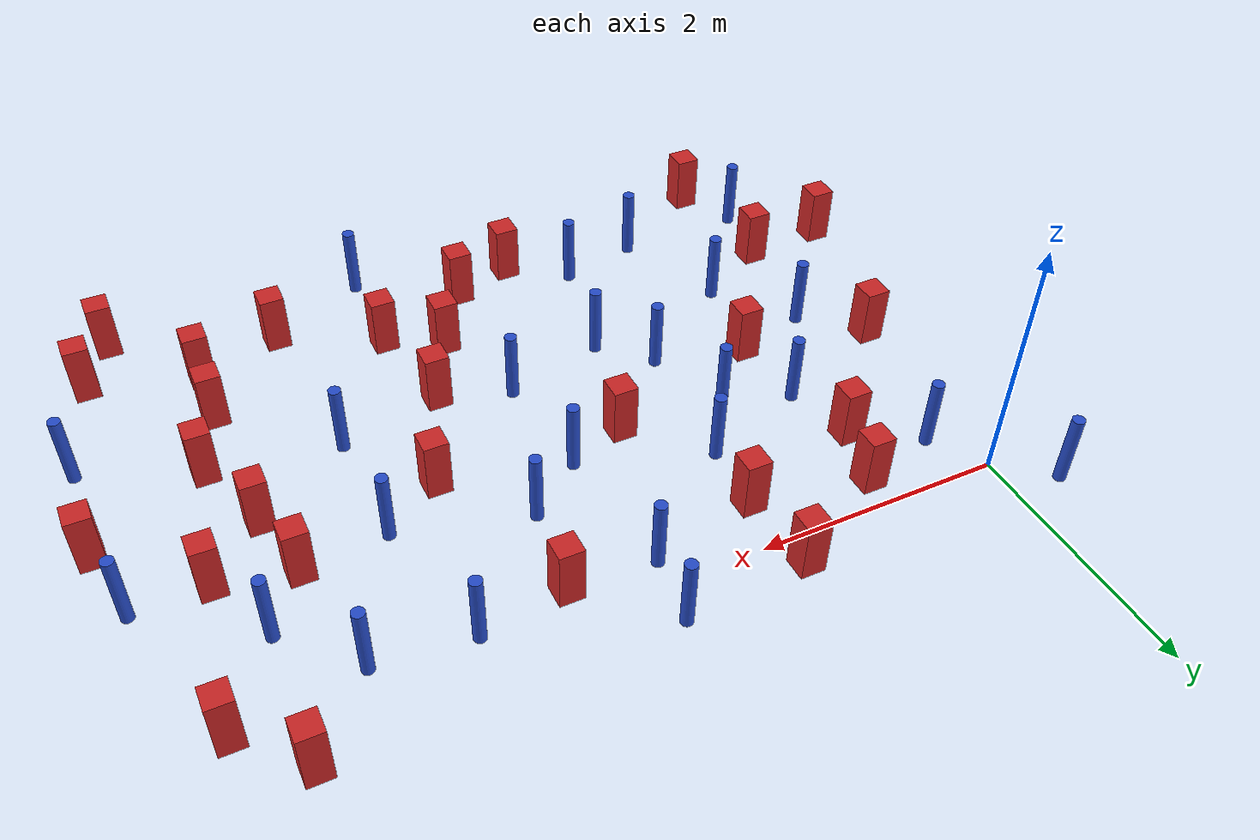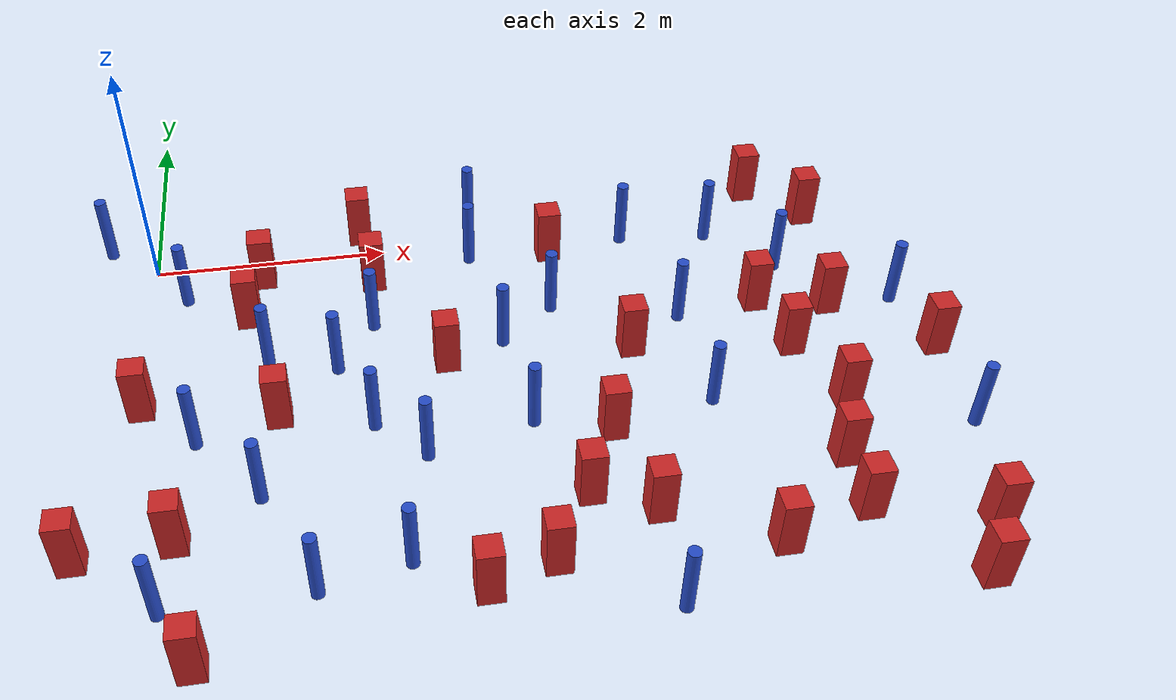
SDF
<sdf version="1.6">
 <model name="dense_27">
  <model name="square_post_obstacle6">
   <static>true</static>
   <pose>3.90744752582 -1.59957269851 1.91545236811e-07 -7.35059704564e-06 1.12565212e-07 2.39332434364e-05</pose>
   <link name="link">
    <pose>0 0 0.25 0 -0 0</pose>
    <inertial>
     <mass>100</mass>
     <inertia>
      <ixx>0.166667</ixx>
      <ixy>0</ixy>
      <ixz>0</ixz>
      <iyy>0.166667</iyy>
      <iyz>0</iyz>
      <izz>0.166667</izz>
     </inertia>
    </inertial>
    <collision name="collision"><geometry><box><size>.2 .2 .5</size></box></geometry></collision>
    <visual name="visual">
     <geometry><box><size>.2 .2 .5</size></box></geometry>
     <material>
      <script><name>Gazebo/Red</name><uri>file://media/materials/scripts/gazebo.material</uri></script>
     </material>
    </visual>
   </link>
  </model>
  <model name="pole_obstacle7">
   <static>true</static>
   <pose>2.8126677085 0.329689469374 7.38925637345e-09 -8.471706928e-08 1.24976765172e-08 -1.74513093013e-07</pose>
   <link name="link">
    <pose>0 0 0.3 0 -0 0</pose>
    <inertial>
     <mass>1</mass>
     <inertia><ixx>0.145833</ixx><ixy>0</ixy><ixz>0</ixz><iyy>0.145833</iyy><iyz>0</iyz><izz>0.125</izz></inertia>
    </inertial>
    <collision name="collision">
     <geometry><cylinder><radius>0.05</radius><length>.6</length></cylinder></geometry>
    </collision>
    <visual name="visual">
     <geometry><cylinder><radius>0.05</radius><length>.6</length></cylinder></geometry>
     <material>
      <script><name>Gazebo/Blue</name><uri>file://media/materials/scripts/gazebo.material</uri></script>
     </material>
    </visual>
   </link>
  </model>
  <model name="square_post_obstacle13">
   <static>true</static>
   <pose>6.10127495856 -3.80343116019 1.91545236811e-07 -7.35059704564e-06 1.12565212e-07 2.39332434364e-05</pose>
   <link name="link">
    <pose>0 0 0.25 0 -0 0</pose>
    <inertial>
     <mass>100</mass>
     <inertia>
      <ixx>0.166667</ixx>
      <ixy>0</ixy>
      <ixz>0</ixz>
      <iyy>0.166667</iyy>
      <iyz>0</iyz>
      <izz>0.166667</izz>
     </inertia>
    </inertial>
    <collision name="collision"><geometry><box><size>.2 .2 .5</size></box></geometry></collision>
    <visual name="visual">
     <geometry><box><size>.2 .2 .5</size></box></geometry>
     <material>
      <script><name>Gazebo/Red</name><uri>file://media/materials/scripts/gazebo.material</uri></script>
     </material>
    </visual>
   </link>
  </model>
  <model name="square_post_obstacle14">
   <static>true</static>
   <pose>1.80562686687 0.251162258014 1.91545236811e-07 -7.35059704564e-06 1.12565212e-07 2.39332434364e-05</pose>
   <link name="link">
    <pose>0 0 0.25 0 -0 0</pose>
    <inertial>
     <mass>100</mass>
     <inertia>
      <ixx>0.166667</ixx>
      <ixy>0</ixy>
      <ixz>0</ixz>
      <iyy>0.166667</iyy>
      <iyz>0</iyz>
      <izz>0.166667</izz>
     </inertia>
    </inertial>
    <collision name="collision"><geometry><box><size>.2 .2 .5</size></box></geometry></collision>
    <visual name="visual">
     <geometry><box><size>.2 .2 .5</size></box></geometry>
     <material>
      <script><name>Gazebo/Red</name><uri>file://media/materials/scripts/gazebo.material</uri></script>
     </material>
    </visual>
   </link>
  </model>
  <model name="square_post_obstacle21">
   <static>true</static>
   <pose>0.802221249417 -0.748672035375 1.91545236811e-07 -7.35059704564e-06 1.12565212e-07 2.39332434364e-05</pose>
   <link name="link">
    <pose>0 0 0.25 0 -0 0</pose>
    <inertial>
     <mass>100</mass>
     <inertia>
      <ixx>0.166667</ixx>
      <ixy>0</ixy>
      <ixz>0</ixz>
      <iyy>0.166667</iyy>
      <iyz>0</iyz>
      <izz>0.166667</izz>
     </inertia>
    </inertial>
    <collision name="collision"><geometry><box><size>.2 .2 .5</size></box></geometry></collision>
    <visual name="visual">
     <geometry><box><size>.2 .2 .5</size></box></geometry>
     <material>
      <script><name>Gazebo/Red</name><uri>file://media/materials/scripts/gazebo.material</uri></script>
     </material>
    </visual>
   </link>
  </model>
  <model name="pole_obstacle15">
   <static>true</static>
   <pose>1.24080618713 -3.68273115442 7.38925637345e-09 -8.47170692799e-08 1.24976765053e-08 -1.74513093017e-07</pose>
   <link name="link">
    <pose>0 0 0.3 0 -0 0</pose>
    <inertial>
     <mass>1</mass>
     <inertia><ixx>0.145833</ixx><ixy>0</ixy><ixz>0</ixz><iyy>0.145833</iyy><iyz>0</iyz><izz>0.125</izz></inertia>
    </inertial>
    <collision name="collision">
     <geometry><cylinder><radius>0.05</radius><length>.6</length></cylinder></geometry>
    </collision>
    <visual name="visual">
     <geometry><cylinder><radius>0.05</radius><length>.6</length></cylinder></geometry>
     <material>
      <script><name>Gazebo/Blue</name><uri>file://media/materials/scripts/gazebo.material</uri></script>
     </material>
    </visual>
   </link>
  </model>
  <model name="pole_obstacle22">
   <static>true</static>
   <pose>3.34542982329 -0.992490725536 7.38925637345e-09 -8.471706928e-08 1.24976765191e-08 -1.74513093012e-07</pose>
   <link name="link">
    <pose>0 0 0.3 0 -0 0</pose>
    <inertial>
     <mass>1</mass>
     <inertia><ixx>0.145833</ixx><ixy>0</ixy><ixz>0</ixz><iyy>0.145833</iyy><iyz>0</iyz><izz>0.125</izz></inertia>
    </inertial>
    <collision name="collision">
     <geometry><cylinder><radius>0.05</radius><length>.6</length></cylinder></geometry>
    </collision>
    <visual name="visual">
     <geometry><cylinder><radius>0.05</radius><length>.6</length></cylinder></geometry>
     <material>
      <script><name>Gazebo/Blue</name><uri>file://media/materials/scripts/gazebo.material</uri></script>
     </material>
    </visual>
   </link>
  </model>
  <model name="square_post_obstacle35">
   <static>true</static>
   <pose>0.264709637256 -3.11509529331 1.91545236811e-07 -7.35059704564e-06 1.12565212e-07 2.39332434364e-05</pose>
   <link name="link">
    <pose>0 0 0.25 0 -0 0</pose>
    <inertial>
     <mass>100</mass>
     <inertia>
      <ixx>0.166667</ixx>
      <ixy>0</ixy>
      <ixz>0</ixz>
      <iyy>0.166667</iyy>
      <iyz>0</iyz>
      <izz>0.166667</izz>
     </inertia>
    </inertial>
    <collision name="collision"><geometry><box><size>.2 .2 .5</size></box></geometry></collision>
    <visual name="visual">
     <geometry><box><size>.2 .2 .5</size></box></geometry>
     <material>
      <script><name>Gazebo/Red</name><uri>file://media/materials/scripts/gazebo.material</uri></script>
     </material>
    </visual>
   </link>
  </model>
  <model name="pole_obstacle35">
   <static>true</static>
   <pose>4.14205065839 -0.144217028738 7.38925637345e-09 -8.471706928e-08 1.24976765188e-08 -1.74513093011e-07</pose>
   <link name="link">
    <pose>0 0 0.3 0 -0 0</pose>
    <inertial>
     <mass>1</mass>
     <inertia><ixx>0.145833</ixx><ixy>0</ixy><ixz>0</ixz><iyy>0.145833</iyy><iyz>0</iyz><izz>0.125</izz></inertia>
    </inertial>
    <collision name="collision">
     <geometry><cylinder><radius>0.05</radius><length>.6</length></cylinder></geometry>
    </collision>
    <visual name="visual">
     <geometry><cylinder><radius>0.05</radius><length>.6</length></cylinder></geometry>
     <material>
      <script><name>Gazebo/Blue</name><uri>file://media/materials/scripts/gazebo.material</uri></script>
     </material>
    </visual>
   </link>
  </model>
  <model name="pole_obstacle43">
   <static>true</static>
   <pose>1.50630428413 -1.4778519651 7.38925637345e-09 -8.471706928e-08 1.24976765079e-08 -1.74513093017e-07</pose>
   <link name="link">
    <pose>0 0 0.3 0 -0 0</pose>
    <inertial>
     <mass>1</mass>
     <inertia><ixx>0.145833</ixx><ixy>0</ixy><ixz>0</ixz><iyy>0.145833</iyy><iyz>0</iyz><izz>0.125</izz></inertia>
    </inertial>
    <collision name="collision">
     <geometry><cylinder><radius>0.05</radius><length>.6</length></cylinder></geometry>
    </collision>
    <visual name="visual">
     <geometry><cylinder><radius>0.05</radius><length>.6</length></cylinder></geometry>
     <material>
      <script><name>Gazebo/Blue</name><uri>file://media/materials/scripts/gazebo.material</uri></script>
     </material>
    </visual>
   </link>
  </model>
  <model name="square_post_obstacle44">
   <static>true</static>
   <pose>3.25651356782 -3.10686308579 1.91545236811e-07 -7.35059704564e-06 1.12565212e-07 2.39332434364e-05</pose>
   <link name="link">
    <pose>0 0 0.25 0 -0 0</pose>
    <inertial>
     <mass>100</mass>
     <inertia>
      <ixx>0.166667</ixx>
      <ixy>0</ixy>
      <ixz>0</ixz>
      <iyy>0.166667</iyy>
      <iyz>0</iyz>
      <izz>0.166667</izz>
     </inertia>
    </inertial>
    <collision name="collision"><geometry><box><size>.2 .2 .5</size></box></geometry></collision>
    <visual name="visual">
     <geometry><box><size>.2 .2 .5</size></box></geometry>
     <material>
      <script><name>Gazebo/Red</name><uri>file://media/materials/scripts/gazebo.material</uri></script>
     </material>
    </visual>
   </link>
  </model>
  <model name="square_post_obstacle54">
   <static>true</static>
   <pose>2.38912613256 -1.54103098857 1.91545236811e-07 -7.35059704564e-06 1.12565212e-07 2.39332434364e-05</pose>
   <link name="link">
    <pose>0 0 0.25 0 -0 0</pose>
    <inertial>
     <mass>100</mass>
     <inertia>
      <ixx>0.166667</ixx>
      <ixy>0</ixy>
      <ixz>0</ixz>
      <iyy>0.166667</iyy>
      <iyz>0</iyz>
      <izz>0.166667</izz>
     </inertia>
    </inertial>
    <collision name="collision"><geometry><box><size>.2 .2 .5</size></box></geometry></collision>
    <visual name="visual">
     <geometry><box><size>.2 .2 .5</size></box></geometry>
     <material>
      <script><name>Gazebo/Red</name><uri>file://media/materials/scripts/gazebo.material</uri></script>
     </material>
    </visual>
   </link>
  </model>
  <model name="square_post_obstacle57">
   <static>true</static>
   <pose>3.71561857062 -3.34809296636 1.91545236811e-07 -7.35059704564e-06 1.12565212e-07 2.39332434364e-05</pose>
   <link name="link">
    <pose>0 0 0.25 0 -0 0</pose>
    <inertial>
     <mass>100</mass>
     <inertia>
      <ixx>0.166667</ixx>
      <ixy>0</ixy>
      <ixz>0</ixz>
      <iyy>0.166667</iyy>
      <iyz>0</iyz>
      <izz>0.166667</izz>
     </inertia>
    </inertial>
    <collision name="collision"><geometry><box><size>.2 .2 .5</size></box></geometry></collision>
    <visual name="visual">
     <geometry><box><size>.2 .2 .5</size></box></geometry>
     <material>
      <script><name>Gazebo/Red</name><uri>file://media/materials/scripts/gazebo.material</uri></script>
     </material>
    </visual>
   </link>
  </model>
  <model name="pole_obstacle55">
   <static>true</static>
   <pose>-0.408426533875 0.336717864815 7.38925637345e-09 -8.471706928e-08 1.24976765138e-08 -1.74513093013e-07</pose>
   <link name="link">
    <pose>0 0 0.3 0 -0 0</pose>
    <inertial>
     <mass>1</mass>
     <inertia><ixx>0.145833</ixx><ixy>0</ixy><ixz>0</ixz><iyy>0.145833</iyy><iyz>0</iyz><izz>0.125</izz></inertia>
    </inertial>
    <collision name="collision">
     <geometry><cylinder><radius>0.05</radius><length>.6</length></cylinder></geometry>
    </collision>
    <visual name="visual">
     <geometry><cylinder><radius>0.05</radius><length>.6</length></cylinder></geometry>
     <material>
      <script><name>Gazebo/Blue</name><uri>file://media/materials/scripts/gazebo.material</uri></script>
     </material>
    </visual>
   </link>
  </model>
  <model name="square_post_obstacle61">
   <static>true</static>
   <pose>0.936074325556 -0.243425901079 1.91545236811e-07 -7.35059704564e-06 1.12565212e-07 2.39332434364e-05</pose>
   <link name="link">
    <pose>0 0 0.25 0 -0 0</pose>
    <inertial>
     <mass>100</mass>
     <inertia>
      <ixx>0.166667</ixx>
      <ixy>0</ixy>
      <ixz>0</ixz>
      <iyy>0.166667</iyy>
      <iyz>0</iyz>
      <izz>0.166667</izz>
     </inertia>
    </inertial>
    <collision name="collision"><geometry><box><size>.2 .2 .5</size></box></geometry></collision>
    <visual name="visual">
     <geometry><box><size>.2 .2 .5</size></box></geometry>
     <material>
      <script><name>Gazebo/Red</name><uri>file://media/materials/scripts/gazebo.material</uri></script>
     </material>
    </visual>
   </link>
  </model>
  <model name="pole_obstacle62">
   <static>true</static>
   <pose>0.277646988783 -0.421277429795 7.38925637345e-09 -8.47170692799e-08 1.24976765104e-08 -1.74513093014e-07</pose>
   <link name="link">
    <pose>0 0 0.3 0 -0 0</pose>
    <inertial>
     <mass>1</mass>
     <inertia><ixx>0.145833</ixx><ixy>0</ixy><ixz>0</ixz><iyy>0.145833</iyy><iyz>0</iyz><izz>0.125</izz></inertia>
    </inertial>
    <collision name="collision">
     <geometry><cylinder><radius>0.05</radius><length>.6</length></cylinder></geometry>
    </collision>
    <visual name="visual">
     <geometry><cylinder><radius>0.05</radius><length>.6</length></cylinder></geometry>
     <material>
      <script><name>Gazebo/Blue</name><uri>file://media/materials/scripts/gazebo.material</uri></script>
     </material>
    </visual>
   </link>
  </model>
  <model name="square_post_obstacle64">
   <static>true</static>
   <pose>-0.0418688581248 -1.72332712203 1.91545236811e-07 -7.35059704564e-06 1.12565212e-07 2.39332434364e-05</pose>
   <link name="link">
    <pose>0 0 0.25 0 -0 0</pose>
    <inertial>
     <mass>100</mass>
     <inertia>
      <ixx>0.166667</ixx>
      <ixy>0</ixy>
      <ixz>0</ixz>
      <iyy>0.166667</iyy>
      <iyz>0</iyz>
      <izz>0.166667</izz>
     </inertia>
    </inertial>
    <collision name="collision"><geometry><box><size>.2 .2 .5</size></box></geometry></collision>
    <visual name="visual">
     <geometry><box><size>.2 .2 .5</size></box></geometry>
     <material>
      <script><name>Gazebo/Red</name><uri>file://media/materials/scripts/gazebo.material</uri></script>
     </material>
    </visual>
   </link>
  </model>
  <model name="square_post_obstacle67">
   <static>true</static>
   <pose>5.07744827272 -1.19955849043 1.91545236811e-07 -7.35059704564e-06 1.12565212e-07 2.39332434364e-05</pose>
   <link name="link">
    <pose>0 0 0.25 0 -0 0</pose>
    <inertial>
     <mass>100</mass>
     <inertia>
      <ixx>0.166667</ixx>
      <ixy>0</ixy>
      <ixz>0</ixz>
      <iyy>0.166667</iyy>
      <iyz>0</iyz>
      <izz>0.166667</izz>
     </inertia>
    </inertial>
    <collision name="collision"><geometry><box><size>.2 .2 .5</size></box></geometry></collision>
    <visual name="visual">
     <geometry><box><size>.2 .2 .5</size></box></geometry>
     <material>
      <script><name>Gazebo/Red</name><uri>file://media/materials/scripts/gazebo.material</uri></script>
     </material>
    </visual>
   </link>
  </model>
  <model name="square_post_obstacle73">
   <static>true</static>
   <pose>6.38977286289 -1.96521949778 1.91545236811e-07 -7.35059704564e-06 1.12565212e-07 2.39332434364e-05</pose>
   <link name="link">
    <pose>0 0 0.25 0 -0 0</pose>
    <inertial>
     <mass>100</mass>
     <inertia>
      <ixx>0.166667</ixx>
      <ixy>0</ixy>
      <ixz>0</ixz>
      <iyy>0.166667</iyy>
      <iyz>0</iyz>
      <izz>0.166667</izz>
     </inertia>
    </inertial>
    <collision name="collision"><geometry><box><size>.2 .2 .5</size></box></geometry></collision>
    <visual name="visual">
     <geometry><box><size>.2 .2 .5</size></box></geometry>
     <material>
      <script><name>Gazebo/Red</name><uri>file://media/materials/scripts/gazebo.material</uri></script>
     </material>
    </visual>
   </link>
  </model>
  <model name="pole_obstacle76">
   <static>true</static>
   <pose>4.39181495859 -1.27941585076 7.38925637345e-09 -8.471706928e-08 1.24976765134e-08 -1.74513093015e-07</pose>
   <link name="link">
    <pose>0 0 0.3 0 -0 0</pose>
    <inertial>
     <mass>1</mass>
     <inertia><ixx>0.145833</ixx><ixy>0</ixy><ixz>0</ixz><iyy>0.145833</iyy><iyz>0</iyz><izz>0.125</izz></inertia>
    </inertial>
    <collision name="collision">
     <geometry><cylinder><radius>0.05</radius><length>.6</length></cylinder></geometry>
    </collision>
    <visual name="visual">
     <geometry><cylinder><radius>0.05</radius><length>.6</length></cylinder></geometry>
     <material>
      <script><name>Gazebo/Blue</name><uri>file://media/materials/scripts/gazebo.material</uri></script>
     </material>
    </visual>
   </link>
  </model>
  <model name="pole_obstacle86">
   <static>true</static>
   <pose>1.83512415653 -0.991032773045 7.38925637345e-09 -8.47170692798e-08 1.24976765028e-08 -1.74513093019e-07</pose>
   <link name="link">
    <pose>0 0 0.3 0 -0 0</pose>
    <inertial>
     <mass>1</mass>
     <inertia><ixx>0.145833</ixx><ixy>0</ixy><ixz>0</ixz><iyy>0.145833</iyy><iyz>0</iyz><izz>0.125</izz></inertia>
    </inertial>
    <collision name="collision">
     <geometry><cylinder><radius>0.05</radius><length>.6</length></cylinder></geometry>
    </collision>
    <visual name="visual">
     <geometry><cylinder><radius>0.05</radius><length>.6</length></cylinder></geometry>
     <material>
      <script><name>Gazebo/Blue</name><uri>file://media/materials/scripts/gazebo.material</uri></script>
     </material>
    </visual>
   </link>
  </model>
  <model name="pole_obstacle90">
   <static>true</static>
   <pose>6.36649241427 -2.84622281165 7.38925637345e-09 -8.47170692798e-08 1.24976764937e-08 -1.74513093023e-07</pose>
   <link name="link">
    <pose>0 0 0.3 0 -0 0</pose>
    <inertial>
     <mass>1</mass>
     <inertia><ixx>0.145833</ixx><ixy>0</ixy><ixz>0</ixz><iyy>0.145833</iyy><iyz>0</iyz><izz>0.125</izz></inertia>
    </inertial>
    <collision name="collision">
     <geometry><cylinder><radius>0.05</radius><length>.6</length></cylinder></geometry>
    </collision>
    <visual name="visual">
     <geometry><cylinder><radius>0.05</radius><length>.6</length></cylinder></geometry>
     <material>
      <script><name>Gazebo/Blue</name><uri>file://media/materials/scripts/gazebo.material</uri></script>
     </material>
    </visual>
   </link>
  </model>
  <model name="pole_obstacle98">
   <static>true</static>
   <pose>0.384641938088 -2.14388097945 7.38925637345e-09 -8.471706928e-08 1.24976765084e-08 -1.74513093017e-07</pose>
   <link name="link">
    <pose>0 0 0.3 0 -0 0</pose>
    <inertial>
     <mass>1</mass>
     <inertia><ixx>0.145833</ixx><ixy>0</ixy><ixz>0</ixz><iyy>0.145833</iyy><iyz>0</iyz><izz>0.125</izz></inertia>
    </inertial>
    <collision name="collision">
     <geometry><cylinder><radius>0.05</radius><length>.6</length></cylinder></geometry>
    </collision>
    <visual name="visual">
     <geometry><cylinder><radius>0.05</radius><length>.6</length></cylinder></geometry>
     <material>
      <script><name>Gazebo/Blue</name><uri>file://media/materials/scripts/gazebo.material</uri></script>
     </material>
    </visual>
   </link>
  </model>
  <model name="square_post_obstacle104">
   <static>true</static>
   <pose>5.84405503091 -4.27012074093 1.91545236811e-07 -7.35059704564e-06 1.12565212e-07 2.39332434364e-05</pose>
   <link name="link">
    <pose>0 0 0.25 0 -0 0</pose>
    <inertial>
     <mass>100</mass>
     <inertia>
      <ixx>0.166667</ixx>
      <ixy>0</ixy>
      <ixz>0</ixz>
      <iyy>0.166667</iyy>
      <iyz>0</iyz>
      <izz>0.166667</izz>
     </inertia>
    </inertial>
    <collision name="collision"><geometry><box><size>.2 .2 .5</size></box></geometry></collision>
    <visual name="visual">
     <geometry><box><size>.2 .2 .5</size></box></geometry>
     <material>
      <script><name>Gazebo/Red</name><uri>file://media/materials/scripts/gazebo.material</uri></script>
     </material>
    </visual>
   </link>
  </model>
  <model name="square_post_obstacle108">
   <static>true</static>
   <pose>3.4484123092 -0.247951691455 1.91545236811e-07 -7.35059704564e-06 1.12565212e-07 2.39332434364e-05</pose>
   <link name="link">
    <pose>0 0 0.25 0 -0 0</pose>
    <inertial>
     <mass>100</mass>
     <inertia>
      <ixx>0.166667</ixx>
      <ixy>0</ixy>
      <ixz>0</ixz>
      <iyy>0.166667</iyy>
      <iyz>0</iyz>
      <izz>0.166667</izz>
     </inertia>
    </inertial>
    <collision name="collision"><geometry><box><size>.2 .2 .5</size></box></geometry></collision>
    <visual name="visual">
     <geometry><box><size>.2 .2 .5</size></box></geometry>
     <material>
      <script><name>Gazebo/Red</name><uri>file://media/materials/scripts/gazebo.material</uri></script>
     </material>
    </visual>
   </link>
  </model>
  <model name="pole_obstacle124">
   <static>true</static>
   <pose>0.87080441848 -2.76658857675 7.38925637345e-09 -8.47170692799e-08 1.2497676509e-08 -1.74513093016e-07</pose>
   <link name="link">
    <pose>0 0 0.3 0 -0 0</pose>
    <inertial>
     <mass>1</mass>
     <inertia><ixx>0.145833</ixx><ixy>0</ixy><ixz>0</ixz><iyy>0.145833</iyy><iyz>0</iyz><izz>0.125</izz></inertia>
    </inertial>
    <collision name="collision">
     <geometry><cylinder><radius>0.05</radius><length>.6</length></cylinder></geometry>
    </collision>
    <visual name="visual">
     <geometry><cylinder><radius>0.05</radius><length>.6</length></cylinder></geometry>
     <material>
      <script><name>Gazebo/Blue</name><uri>file://media/materials/scripts/gazebo.material</uri></script>
     </material>
    </visual>
   </link>
  </model>
  <model name="square_post_obstacle117">
   <static>true</static>
   <pose>1.024690325 -1.96826591237 1.91545236811e-07 -7.35059704564e-06 1.12565212e-07 2.39332434364e-05</pose>
   <link name="link">
    <pose>0 0 0.25 0 -0 0</pose>
    <inertial>
     <mass>100</mass>
     <inertia>
      <ixx>0.166667</ixx>
      <ixy>0</ixy>
      <ixz>0</ixz>
      <iyy>0.166667</iyy>
      <iyz>0</iyz>
      <izz>0.166667</izz>
     </inertia>
    </inertial>
    <collision name="collision"><geometry><box><size>.2 .2 .5</size></box></geometry></collision>
    <visual name="visual">
     <geometry><box><size>.2 .2 .5</size></box></geometry>
     <material>
      <script><name>Gazebo/Red</name><uri>file://media/materials/scripts/gazebo.material</uri></script>
     </material>
    </visual>
   </link>
  </model>
  <model name="pole_obstacle138">
   <static>true</static>
   <pose>5.40717876437 -0.745963642939 7.38925637345e-09 -8.47170692799e-08 1.24976765038e-08 -1.74513093018e-07</pose>
   <link name="link">
    <pose>0 0 0.3 0 -0 0</pose>
    <inertial>
     <mass>1</mass>
     <inertia><ixx>0.145833</ixx><ixy>0</ixy><ixz>0</ixz><iyy>0.145833</iyy><iyz>0</iyz><izz>0.125</izz></inertia>
    </inertial>
    <collision name="collision">
     <geometry><cylinder><radius>0.05</radius><length>.6</length></cylinder></geometry>
    </collision>
    <visual name="visual">
     <geometry><cylinder><radius>0.05</radius><length>.6</length></cylinder></geometry>
     <material>
      <script><name>Gazebo/Blue</name><uri>file://media/materials/scripts/gazebo.material</uri></script>
     </material>
    </visual>
   </link>
  </model>
  <model name="pole_obstacle139">
   <static>true</static>
   <pose>1.75220052929 -2.15895898228 7.38925637345e-09 -8.47170692799e-08 1.24976765053e-08 -1.74513093017e-07</pose>
   <link name="link">
    <pose>0 0 0.3 0 -0 0</pose>
    <inertial>
     <mass>1</mass>
     <inertia><ixx>0.145833</ixx><ixy>0</ixy><ixz>0</ixz><iyy>0.145833</iyy><iyz>0</iyz><izz>0.125</izz></inertia>
    </inertial>
    <collision name="collision">
     <geometry><cylinder><radius>0.05</radius><length>.6</length></cylinder></geometry>
    </collision>
    <visual name="visual">
     <geometry><cylinder><radius>0.05</radius><length>.6</length></cylinder></geometry>
     <material>
      <script><name>Gazebo/Blue</name><uri>file://media/materials/scripts/gazebo.material</uri></script>
     </material>
    </visual>
   </link>
  </model>
  <model name="square_post_obstacle126">
   <static>true</static>
   <pose>-0.438166486716 -3.17090479498 1.91545236811e-07 -7.35059704564e-06 1.12565212e-07 2.39332434364e-05</pose>
   <link name="link">
    <pose>0 0 0.25 0 -0 0</pose>
    <inertial>
     <mass>100</mass>
     <inertia>
      <ixx>0.166667</ixx>
      <ixy>0</ixy>
      <ixz>0</ixz>
      <iyy>0.166667</iyy>
      <iyz>0</iyz>
      <izz>0.166667</izz>
     </inertia>
    </inertial>
    <collision name="collision"><geometry><box><size>.2 .2 .5</size></box></geometry></collision>
    <visual name="visual">
     <geometry><box><size>.2 .2 .5</size></box></geometry>
     <material>
      <script><name>Gazebo/Red</name><uri>file://media/materials/scripts/gazebo.material</uri></script>
     </material>
    </visual>
   </link>
  </model>
  <model name="square_post_obstacle127">
   <static>true</static>
   <pose>0.41379510753 -4.16923032119 1.91545236811e-07 -7.35059704564e-06 1.12565212e-07 2.39332434364e-05</pose>
   <link name="link">
    <pose>0 0 0.25 0 -0 0</pose>
    <inertial>
     <mass>100</mass>
     <inertia>
      <ixx>0.166667</ixx>
      <ixy>0</ixy>
      <ixz>0</ixz>
      <iyy>0.166667</iyy>
      <iyz>0</iyz>
      <izz>0.166667</izz>
     </inertia>
    </inertial>
    <collision name="collision"><geometry><box><size>.2 .2 .5</size></box></geometry></collision>
    <visual name="visual">
     <geometry><box><size>.2 .2 .5</size></box></geometry>
     <material>
      <script><name>Gazebo/Red</name><uri>file://media/materials/scripts/gazebo.material</uri></script>
     </material>
    </visual>
   </link>
  </model>
  <model name="square_post_obstacle129">
   <static>true</static>
   <pose>2.39956887521 -3.85616389181 1.91545236811e-07 -7.35059704564e-06 1.12565212e-07 2.39332434364e-05</pose>
   <link name="link">
    <pose>0 0 0.25 0 -0 0</pose>
    <inertial>
     <mass>100</mass>
     <inertia>
      <ixx>0.166667</ixx>
      <ixy>0</ixy>
      <ixz>0</ixz>
      <iyy>0.166667</iyy>
      <iyz>0</iyz>
      <izz>0.166667</izz>
     </inertia>
    </inertial>
    <collision name="collision"><geometry><box><size>.2 .2 .5</size></box></geometry></collision>
    <visual name="visual">
     <geometry><box><size>.2 .2 .5</size></box></geometry>
     <material>
      <script><name>Gazebo/Red</name><uri>file://media/materials/scripts/gazebo.material</uri></script>
     </material>
    </visual>
   </link>
  </model>
  <model name="pole_obstacle147">
   <static>true</static>
   <pose>6.26183893967 -1.33099187983 7.38925637345e-09 -8.471706928e-08 1.24976765134e-08 -1.74513093015e-07</pose>
   <link name="link">
    <pose>0 0 0.3 0 -0 0</pose>
    <inertial>
     <mass>1</mass>
     <inertia><ixx>0.145833</ixx><ixy>0</ixy><ixz>0</ixz><iyy>0.145833</iyy><iyz>0</iyz><izz>0.125</izz></inertia>
    </inertial>
    <collision name="collision">
     <geometry><cylinder><radius>0.05</radius><length>.6</length></cylinder></geometry>
    </collision>
    <visual name="visual">
     <geometry><cylinder><radius>0.05</radius><length>.6</length></cylinder></geometry>
     <material>
      <script><name>Gazebo/Blue</name><uri>file://media/materials/scripts/gazebo.material</uri></script>
     </material>
    </visual>
   </link>
  </model>
  <model name="pole_obstacle152">
   <static>true</static>
   <pose>0.164203151626 -3.69427712803 7.38925637345e-09 -8.47170692792e-08 1.24976764391e-08 -1.74513093041e-07</pose>
   <link name="link">
    <pose>0 0 0.3 0 -0 0</pose>
    <inertial>
     <mass>1</mass>
     <inertia><ixx>0.145833</ixx><ixy>0</ixy><ixz>0</ixz><iyy>0.145833</iyy><iyz>0</iyz><izz>0.125</izz></inertia>
    </inertial>
    <collision name="collision">
     <geometry><cylinder><radius>0.05</radius><length>.6</length></cylinder></geometry>
    </collision>
    <visual name="visual">
     <geometry><cylinder><radius>0.05</radius><length>.6</length></cylinder></geometry>
     <material>
      <script><name>Gazebo/Blue</name><uri>file://media/materials/scripts/gazebo.material</uri></script>
     </material>
    </visual>
   </link>
  </model>
  <model name="pole_obstacle155">
   <static>true</static>
   <pose>4.90849619738 -0.221024347678 7.38925637345e-09 -8.471706928e-08 1.24976765089e-08 -1.74513093017e-07</pose>
   <link name="link">
    <pose>0 0 0.3 0 -0 0</pose>
    <inertial>
     <mass>1</mass>
     <inertia><ixx>0.145833</ixx><ixy>0</ixy><ixz>0</ixz><iyy>0.145833</iyy><iyz>0</iyz><izz>0.125</izz></inertia>
    </inertial>
    <collision name="collision">
     <geometry><cylinder><radius>0.05</radius><length>.6</length></cylinder></geometry>
    </collision>
    <visual name="visual">
     <geometry><cylinder><radius>0.05</radius><length>.6</length></cylinder></geometry>
     <material>
      <script><name>Gazebo/Blue</name><uri>file://media/materials/scripts/gazebo.material</uri></script>
     </material>
    </visual>
   </link>
  </model>
  <model name="pole_obstacle156">
   <static>true</static>
   <pose>4.41335565793 -2.29824711931 7.38925637345e-09 -8.47170692798e-08 1.24976764937e-08 -1.74513093023e-07</pose>
   <link name="link">
    <pose>0 0 0.3 0 -0 0</pose>
    <inertial>
     <mass>1</mass>
     <inertia><ixx>0.145833</ixx><ixy>0</ixy><ixz>0</ixz><iyy>0.145833</iyy><iyz>0</iyz><izz>0.125</izz></inertia>
    </inertial>
    <collision name="collision">
     <geometry><cylinder><radius>0.05</radius><length>.6</length></cylinder></geometry>
    </collision>
    <visual name="visual">
     <geometry><cylinder><radius>0.05</radius><length>.6</length></cylinder></geometry>
     <material>
      <script><name>Gazebo/Blue</name><uri>file://media/materials/scripts/gazebo.material</uri></script>
     </material>
    </visual>
   </link>
  </model>
  <model name="square_post_obstacle149">
   <static>true</static>
   <pose>5.21644847671 -3.55737723265 1.91545236811e-07 -7.35059704564e-06 1.12565212e-07 2.39332434364e-05</pose>
   <link name="link">
    <pose>0 0 0.25 0 -0 0</pose>
    <inertial>
     <mass>100</mass>
     <inertia>
      <ixx>0.166667</ixx>
      <ixy>0</ixy>
      <ixz>0</ixz>
      <iyy>0.166667</iyy>
      <iyz>0</iyz>
      <izz>0.166667</izz>
     </inertia>
    </inertial>
    <collision name="collision"><geometry><box><size>.2 .2 .5</size></box></geometry></collision>
    <visual name="visual">
     <geometry><box><size>.2 .2 .5</size></box></geometry>
     <material>
      <script><name>Gazebo/Red</name><uri>file://media/materials/scripts/gazebo.material</uri></script>
     </material>
    </visual>
   </link>
  </model>
  <model name="square_post_obstacle154">
   <static>true</static>
   <pose>5.8696665567 -0.0782182562446 1.91545236811e-07 -7.35059704564e-06 1.12565212e-07 2.39332434364e-05</pose>
   <link name="link">
    <pose>0 0 0.25 0 -0 0</pose>
    <inertial>
     <mass>100</mass>
     <inertia>
      <ixx>0.166667</ixx>
      <ixy>0</ixy>
      <ixz>0</ixz>
      <iyy>0.166667</iyy>
      <iyz>0</iyz>
      <izz>0.166667</izz>
     </inertia>
    </inertial>
    <collision name="collision"><geometry><box><size>.2 .2 .5</size></box></geometry></collision>
    <visual name="visual">
     <geometry><box><size>.2 .2 .5</size></box></geometry>
     <material>
      <script><name>Gazebo/Red</name><uri>file://media/materials/scripts/gazebo.material</uri></script>
     </material>
    </visual>
   </link>
  </model>
  <model name="square_post_obstacle156">
   <static>true</static>
   <pose>5.21216876009 -1.78693397391 1.91545236811e-07 -7.35059704564e-06 1.12565212e-07 2.39332434364e-05</pose>
   <link name="link">
    <pose>0 0 0.25 0 -0 0</pose>
    <inertial>
     <mass>100</mass>
     <inertia>
      <ixx>0.166667</ixx>
      <ixy>0</ixy>
      <ixz>0</ixz>
      <iyy>0.166667</iyy>
      <iyz>0</iyz>
      <izz>0.166667</izz>
     </inertia>
    </inertial>
    <collision name="collision"><geometry><box><size>.2 .2 .5</size></box></geometry></collision>
    <visual name="visual">
     <geometry><box><size>.2 .2 .5</size></box></geometry>
     <material>
      <script><name>Gazebo/Red</name><uri>file://media/materials/scripts/gazebo.material</uri></script>
     </material>
    </visual>
   </link>
  </model>
  <model name="pole_obstacle165">
   <static>true</static>
   <pose>2.97595620634 -2.31019599099 7.38925637345e-09 -8.47170692798e-08 1.24976764939e-08 -1.74513093025e-07</pose>
   <link name="link">
    <pose>0 0 0.3 0 -0 0</pose>
    <inertial>
     <mass>1</mass>
     <inertia><ixx>0.145833</ixx><ixy>0</ixy><ixz>0</ixz><iyy>0.145833</iyy><iyz>0</iyz><izz>0.125</izz></inertia>
    </inertial>
    <collision name="collision">
     <geometry><cylinder><radius>0.05</radius><length>.6</length></cylinder></geometry>
    </collision>
    <visual name="visual">
     <geometry><cylinder><radius>0.05</radius><length>.6</length></cylinder></geometry>
     <material>
      <script><name>Gazebo/Blue</name><uri>file://media/materials/scripts/gazebo.material</uri></script>
     </material>
    </visual>
   </link>
  </model>
  <model name="pole_obstacle166">
   <static>true</static>
   <pose>0.952073634036 -1.30747645167 7.38925637345e-09 -8.47170692798e-08 1.24976764951e-08 -1.74513093022e-07</pose>
   <link name="link">
    <pose>0 0 0.3 0 -0 0</pose>
    <inertial>
     <mass>1</mass>
     <inertia><ixx>0.145833</ixx><ixy>0</ixy><ixz>0</ixz><iyy>0.145833</iyy><iyz>0</iyz><izz>0.125</izz></inertia>
    </inertial>
    <collision name="collision">
     <geometry><cylinder><radius>0.05</radius><length>.6</length></cylinder></geometry>
    </collision>
    <visual name="visual">
     <geometry><cylinder><radius>0.05</radius><length>.6</length></cylinder></geometry>
     <material>
      <script><name>Gazebo/Blue</name><uri>file://media/materials/scripts/gazebo.material</uri></script>
     </material>
    </visual>
   </link>
  </model>
  <model name="pole_obstacle168">
   <static>true</static>
   <pose>2.12409285321 -2.53881342992 7.38925637345e-09 -8.47170692798e-08 1.24976764939e-08 -1.74513093025e-07</pose>
   <link name="link">
    <pose>0 0 0.3 0 -0 0</pose>
    <inertial>
     <mass>1</mass>
     <inertia><ixx>0.145833</ixx><ixy>0</ixy><ixz>0</ixz><iyy>0.145833</iyy><iyz>0</iyz><izz>0.125</izz></inertia>
    </inertial>
    <collision name="collision">
     <geometry><cylinder><radius>0.05</radius><length>.6</length></cylinder></geometry>
    </collision>
    <visual name="visual">
     <geometry><cylinder><radius>0.05</radius><length>.6</length></cylinder></geometry>
     <material>
      <script><name>Gazebo/Blue</name><uri>file://media/materials/scripts/gazebo.material</uri></script>
     </material>
    </visual>
   </link>
  </model>
  <model name="pole_obstacle170">
   <static>true</static>
   <pose>2.74651713844 -0.219253737523 7.38925637345e-09 -8.47170692793e-08 1.24976764426e-08 -1.74513093041e-07</pose>
   <link name="link">
    <pose>0 0 0.3 0 -0 0</pose>
    <inertial>
     <mass>1</mass>
     <inertia><ixx>0.145833</ixx><ixy>0</ixy><ixz>0</ixz><iyy>0.145833</iyy><iyz>0</iyz><izz>0.125</izz></inertia>
    </inertial>
    <collision name="collision">
     <geometry><cylinder><radius>0.05</radius><length>.6</length></cylinder></geometry>
    </collision>
    <visual name="visual">
     <geometry><cylinder><radius>0.05</radius><length>.6</length></cylinder></geometry>
     <material>
      <script><name>Gazebo/Blue</name><uri>file://media/materials/scripts/gazebo.material</uri></script>
     </material>
    </visual>
   </link>
  </model>
  <model name="square_post_obstacle162">
   <static>true</static>
   <pose>5.4364149272 0.366920272132 1.91545236811e-07 -7.35059704564e-06 1.12565212e-07 2.39332434364e-05</pose>
   <link name="link">
    <pose>0 0 0.25 0 -0 0</pose>
    <inertial>
     <mass>100</mass>
     <inertia>
      <ixx>0.166667</ixx>
      <ixy>0</ixy>
      <ixz>0</ixz>
      <iyy>0.166667</iyy>
      <iyz>0</iyz>
      <izz>0.166667</izz>
     </inertia>
    </inertial>
    <collision name="collision"><geometry><box><size>.2 .2 .5</size></box></geometry></collision>
    <visual name="visual">
     <geometry><box><size>.2 .2 .5</size></box></geometry>
     <material>
      <script><name>Gazebo/Red</name><uri>file://media/materials/scripts/gazebo.material</uri></script>
     </material>
    </visual>
   </link>
  </model>
  <model name="pole_obstacle175">
   <static>true</static>
   <pose>1.9072760167 -3.52783521221 7.38925637345e-09 -8.47170692799e-08 1.24976765053e-08 -1.74513093017e-07</pose>
   <link name="link">
    <pose>0 0 0.3 0 -0 0</pose>
    <inertial>
     <mass>1</mass>
     <inertia><ixx>0.145833</ixx><ixy>0</ixy><ixz>0</ixz><iyy>0.145833</iyy><iyz>0</iyz><izz>0.125</izz></inertia>
    </inertial>
    <collision name="collision">
     <geometry><cylinder><radius>0.05</radius><length>.6</length></cylinder></geometry>
    </collision>
    <visual name="visual">
     <geometry><cylinder><radius>0.05</radius><length>.6</length></cylinder></geometry>
     <material>
      <script><name>Gazebo/Blue</name><uri>file://media/materials/scripts/gazebo.material</uri></script>
     </material>
    </visual>
   </link>
  </model>
  <model name="square_post_obstacle165">
   <static>true</static>
   <pose>5.67505183685 -1.33007924592 1.91545236811e-07 -7.35059704564e-06 1.12565212e-07 2.39332434364e-05</pose>
   <link name="link">
    <pose>0 0 0.25 0 -0 0</pose>
    <inertial>
     <mass>100</mass>
     <inertia>
      <ixx>0.166667</ixx>
      <ixy>0</ixy>
      <ixz>0</ixz>
      <iyy>0.166667</iyy>
      <iyz>0</iyz>
      <izz>0.166667</izz>
     </inertia>
    </inertial>
    <collision name="collision"><geometry><box><size>.2 .2 .5</size></box></geometry></collision>
    <visual name="visual">
     <geometry><box><size>.2 .2 .5</size></box></geometry>
     <material>
      <script><name>Gazebo/Red</name><uri>file://media/materials/scripts/gazebo.material</uri></script>
     </material>
    </visual>
   </link>
  </model>
  <model name="pole_obstacle183">
   <static>true</static>
   <pose>2.87870146302 -1.35860693438 7.38925637345e-09 -8.471706928e-08 1.24976765152e-08 -1.74513093012e-07</pose>
   <link name="link">
    <pose>0 0 0.3 0 -0 0</pose>
    <inertial>
     <mass>1</mass>
     <inertia><ixx>0.145833</ixx><ixy>0</ixy><ixz>0</ixz><iyy>0.145833</iyy><iyz>0</iyz><izz>0.125</izz></inertia>
    </inertial>
    <collision name="collision">
     <geometry><cylinder><radius>0.05</radius><length>.6</length></cylinder></geometry>
    </collision>
    <visual name="visual">
     <geometry><cylinder><radius>0.05</radius><length>.6</length></cylinder></geometry>
     <material>
      <script><name>Gazebo/Blue</name><uri>file://media/materials/scripts/gazebo.material</uri></script>
     </material>
    </visual>
   </link>
  </model>
  <model name="square_post_obstacle174">
   <static>true</static>
   <pose>3.56270115249 -2.49704911658 1.91545236811e-07 -7.35059704564e-06 1.12565212e-07 2.39332434364e-05</pose>
   <link name="link">
    <pose>0 0 0.25 0 -0 0</pose>
    <inertial>
     <mass>100</mass>
     <inertia>
      <ixx>0.166667</ixx>
      <ixy>0</ixy>
      <ixz>0</ixz>
      <iyy>0.166667</iyy>
      <iyz>0</iyz>
      <izz>0.166667</izz>
     </inertia>
    </inertial>
    <collision name="collision"><geometry><box><size>.2 .2 .5</size></box></geometry></collision>
    <visual name="visual">
     <geometry><box><size>.2 .2 .5</size></box></geometry>
     <material>
      <script><name>Gazebo/Red</name><uri>file://media/materials/scripts/gazebo.material</uri></script>
     </material>
    </visual>
   </link>
  </model>
  <model name="square_post_obstacle196">
   <static>true</static>
   <pose>5.23365624943 -3.03956663754 1.91545236811e-07 -7.35059704564e-06 1.12565212e-07 2.39332434364e-05</pose>
   <link name="link">
    <pose>0 0 0.25 0 -0 0</pose>
    <inertial>
     <mass>100</mass>
     <inertia>
      <ixx>0.166667</ixx>
      <ixy>0</ixy>
      <ixz>0</ixz>
      <iyy>0.166667</iyy>
      <iyz>0</iyz>
      <izz>0.166667</izz>
     </inertia>
    </inertial>
    <collision name="collision"><geometry><box><size>.2 .2 .5</size></box></geometry></collision>
    <visual name="visual">
     <geometry><box><size>.2 .2 .5</size></box></geometry>
     <material>
      <script><name>Gazebo/Red</name><uri>file://media/materials/scripts/gazebo.material</uri></script>
     </material>
    </visual>
   </link>
  </model>
  <model name="square_post_obstacle203">
   <static>true</static>
   <pose>1.87731080939 -0.423638526625 1.91545236811e-07 -7.35059704564e-06 1.12565212e-07 2.39332434364e-05</pose>
   <link name="link">
    <pose>0 0 0.25 0 -0 0</pose>
    <inertial>
     <mass>100</mass>
     <inertia>
      <ixx>0.166667</ixx>
      <ixy>0</ixy>
      <ixz>0</ixz>
      <iyy>0.166667</iyy>
      <iyz>0</iyz>
      <izz>0.166667</izz>
     </inertia>
    </inertial>
    <collision name="collision"><geometry><box><size>.2 .2 .5</size></box></geometry></collision>
    <visual name="visual">
     <geometry><box><size>.2 .2 .5</size></box></geometry>
     <material>
      <script><name>Gazebo/Red</name><uri>file://media/materials/scripts/gazebo.material</uri></script>
     </material>
    </visual>
   </link>
  </model>
  <model name="pole_obstacle190">
   <static>true</static>
   <pose>3.6978180372 -4.18981836678 7.38925637345e-09 -8.47170692798e-08 1.24976765033e-08 -1.74513093019e-07</pose>
   <link name="link">
    <pose>0 0 0.3 0 -0 0</pose>
    <inertial>
     <mass>1</mass>
     <inertia><ixx>0.145833</ixx><ixy>0</ixy><ixz>0</ixz><iyy>0.145833</iyy><iyz>0</iyz><izz>0.125</izz></inertia>
    </inertial>
    <collision name="collision">
     <geometry><cylinder><radius>0.05</radius><length>.6</length></cylinder></geometry>
    </collision>
    <visual name="visual">
     <geometry><cylinder><radius>0.05</radius><length>.6</length></cylinder></geometry>
     <material>
      <script><name>Gazebo/Blue</name><uri>file://media/materials/scripts/gazebo.material</uri></script>
     </material>
    </visual>
   </link>
  </model>
  <model name="square_post_obstacle208">
   <static>true</static>
   <pose>4.52914459229 -3.77122465084 1.91545236811e-07 -7.35059704564e-06 1.12565212e-07 2.39332434364e-05</pose>
   <link name="link">
    <pose>0 0 0.25 0 -0 0</pose>
    <inertial>
     <mass>100</mass>
     <inertia>
      <ixx>0.166667</ixx>
      <ixy>0</ixy>
      <ixz>0</ixz>
      <iyy>0.166667</iyy>
      <iyz>0</iyz>
      <izz>0.166667</izz>
     </inertia>
    </inertial>
    <collision name="collision"><geometry><box><size>.2 .2 .5</size></box></geometry></collision>
    <visual name="visual">
     <geometry><box><size>.2 .2 .5</size></box></geometry>
     <material>
      <script><name>Gazebo/Red</name><uri>file://media/materials/scripts/gazebo.material</uri></script>
     </material>
    </visual>
   </link>
  </model>
  <model name="square_post_obstacle230">
   <static>true</static>
   <pose>2.90232105216 -3.6892469169 1.91545236811e-07 -7.35059704564e-06 1.12565212e-07 2.39332434364e-05</pose>
   <link name="link">
    <pose>0 0 0.25 0 -0 0</pose>
    <inertial>
     <mass>100</mass>
     <inertia>
      <ixx>0.166667</ixx>
      <ixy>0</ixy>
      <ixz>0</ixz>
      <iyy>0.166667</iyy>
      <iyz>0</iyz>
      <izz>0.166667</izz>
     </inertia>
    </inertial>
    <collision name="collision"><geometry><box><size>.2 .2 .5</size></box></geometry></collision>
    <visual name="visual">
     <geometry><box><size>.2 .2 .5</size></box></geometry>
     <material>
      <script><name>Gazebo/Red</name><uri>file://media/materials/scripts/gazebo.material</uri></script>
     </material>
    </visual>
   </link>
  </model>
  <model name="square_post_obstacle233">
   <static>true</static>
   <pose>5.45357561662 -2.44835821982 1.91545236811e-07 -7.35059704564e-06 1.12565212e-07 2.39332434364e-05</pose>
   <link name="link">
    <pose>0 0 0.25 0 -0 0</pose>
    <inertial>
     <mass>100</mass>
     <inertia>
      <ixx>0.166667</ixx>
      <ixy>0</ixy>
      <ixz>0</ixz>
      <iyy>0.166667</iyy>
      <iyz>0</iyz>
      <izz>0.166667</izz>
     </inertia>
    </inertial>
    <collision name="collision"><geometry><box><size>.2 .2 .5</size></box></geometry></collision>
    <visual name="visual">
     <geometry><box><size>.2 .2 .5</size></box></geometry>
     <material>
      <script><name>Gazebo/Red</name><uri>file://media/materials/scripts/gazebo.material</uri></script>
     </material>
    </visual>
   </link>
  </model>
 </model>
</sdf>
